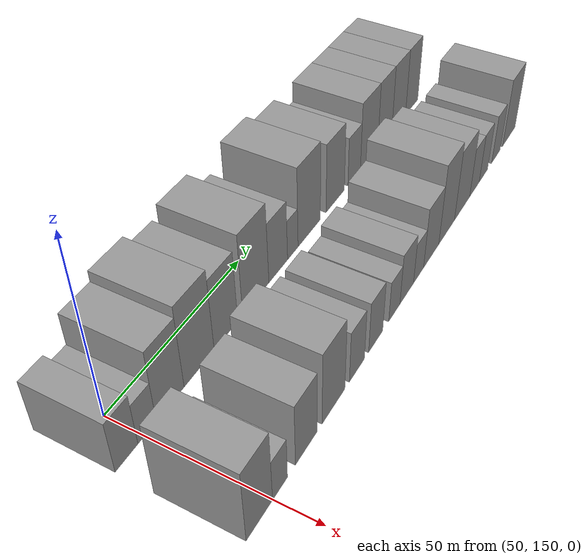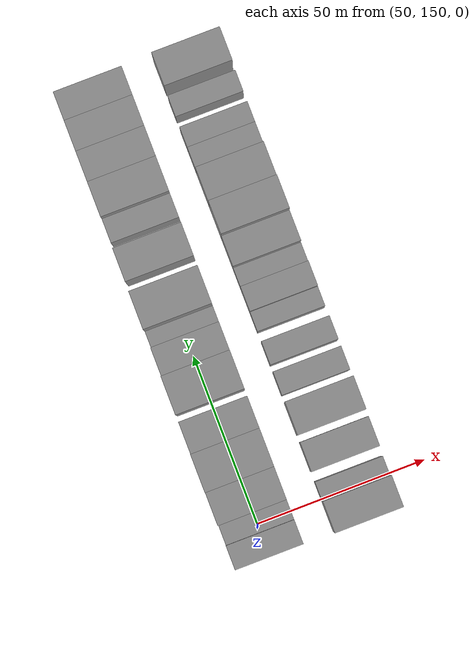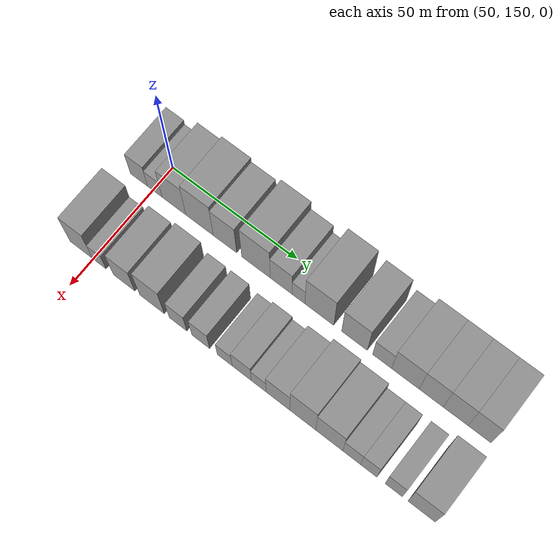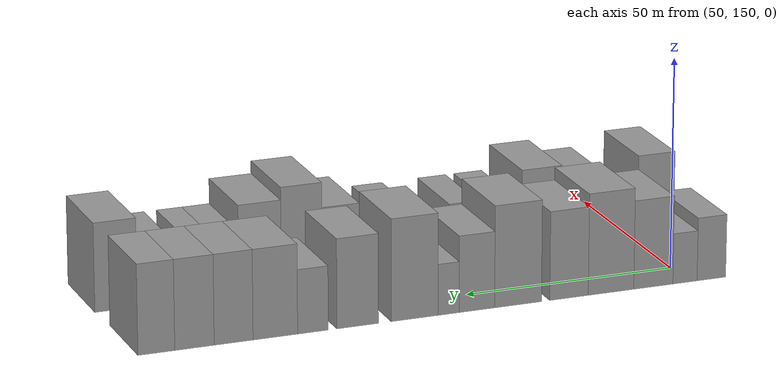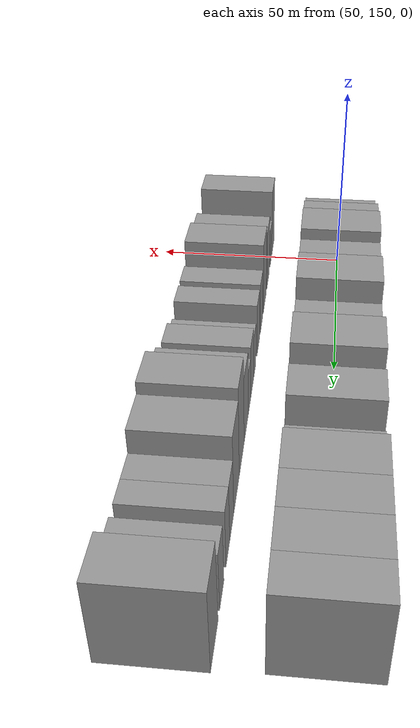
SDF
<sdf version="1.6">
 <world name="default">
  <model name="building_50">
   <static>1</static>
   <pose>50.0000 144.3161 0 0.000000 0.000000 0.000000</pose>
   <link name="link">
    <pose>0 0 7.50 0 0 0</pose>
    <collision name="collision"><geometry><box><size>20.0000 7.1079 15.0000</size></box></geometry></collision>
    <visual name="visual">
     <cast_shadows>0</cast_shadows>
     <geometry><box><size>20.0000 7.1079 15.0000</size></box></geometry>
     <material>
      <script>
       <uri>model://grey_wall/materials/scripts</uri>
       <uri>model://grey_wall/materials/textures</uri>
       <name>vrc/grey_wall</name>
      </script>
     </material>
    </visual>
   </link>
  </model>
  <model name="building_51">
   <static>1</static>
   <pose>50.0000 150.8622 0 0.000000 0.000000 0.000000</pose>
   <link name="link">
    <pose>0 0 6.00 0 0 0</pose>
    <collision name="collision"><geometry><box><size>20.0000 5.9843 12.0000</size></box></geometry></collision>
    <visual name="visual">
     <cast_shadows>0</cast_shadows>
     <geometry><box><size>20.0000 5.9843 12.0000</size></box></geometry>
     <material>
      <script>
       <uri>model://grey_wall/materials/scripts</uri>
       <uri>model://grey_wall/materials/textures</uri>
       <name>vrc/grey_wall</name>
      </script>
     </material>
    </visual>
   </link>
  </model>
  <model name="building_52">
   <static>1</static>
   <pose>50.0000 158.6646 0 0.000000 0.000000 0.000000</pose>
   <link name="link">
    <pose>0 0 10.50 0 0 0</pose>
    <collision name="collision"><geometry><box><size>20.0000 9.6206 21.0000</size></box></geometry></collision>
    <visual name="visual">
     <cast_shadows>0</cast_shadows>
     <geometry><box><size>20.0000 9.6206 21.0000</size></box></geometry>
     <material>
      <script>
       <uri>model://grey_wall/materials/scripts</uri>
       <uri>model://grey_wall/materials/textures</uri>
       <name>vrc/grey_wall</name>
      </script>
     </material>
    </visual>
   </link>
  </model>
  <model name="building_53">
   <static>1</static>
   <pose>50.0000 169.0447 0 0.000000 0.000000 0.000000</pose>
   <link name="link">
    <pose>0 0 12.00 0 0 0</pose>
    <collision name="collision"><geometry><box><size>20.0000 11.1397 24.0000</size></box></geometry></collision>
    <visual name="visual">
     <cast_shadows>0</cast_shadows>
     <geometry><box><size>20.0000 11.1397 24.0000</size></box></geometry>
     <material>
      <script>
       <uri>model://grey_wall/materials/scripts</uri>
       <uri>model://grey_wall/materials/textures</uri>
       <name>vrc/grey_wall</name>
      </script>
     </material>
    </visual>
   </link>
  </model>
  <model name="building_54">
   <static>1</static>
   <pose>50.0000 179.2855 0 0.000000 0.000000 0.000000</pose>
   <link name="link">
    <pose>0 0 10.50 0 0 0</pose>
    <collision name="collision"><geometry><box><size>20.0000 9.3417 21.0000</size></box></geometry></collision>
    <visual name="visual">
     <cast_shadows>0</cast_shadows>
     <geometry><box><size>20.0000 9.3417 21.0000</size></box></geometry>
     <material>
      <script>
       <uri>model://grey_wall/materials/scripts</uri>
       <uri>model://grey_wall/materials/textures</uri>
       <name>vrc/grey_wall</name>
      </script>
     </material>
    </visual>
   </link>
  </model>
  <model name="building_55">
   <static>1</static>
   <pose>50.0000 191.6050 0 0.000000 0.000000 0.000000</pose>
   <link name="link">
    <pose>0 0 12.00 0 0 0</pose>
    <collision name="collision"><geometry><box><size>20.0000 11.2973 24.0000</size></box></geometry></collision>
    <visual name="visual">
     <cast_shadows>0</cast_shadows>
     <geometry><box><size>20.0000 11.2973 24.0000</size></box></geometry>
     <material>
      <script>
       <uri>model://grey_wall/materials/scripts</uri>
       <uri>model://grey_wall/materials/textures</uri>
       <name>vrc/grey_wall</name>
      </script>
     </material>
    </visual>
   </link>
  </model>
  <model name="building_56">
   <static>1</static>
   <pose>50.0000 201.5154 0 0.000000 0.000000 0.000000</pose>
   <link name="link">
    <pose>0 0 9.00 0 0 0</pose>
    <collision name="collision"><geometry><box><size>20.0000 8.5236 18.0000</size></box></geometry></collision>
    <visual name="visual">
     <cast_shadows>0</cast_shadows>
     <geometry><box><size>20.0000 8.5236 18.0000</size></box></geometry>
     <material>
      <script>
       <uri>model://grey_wall/materials/scripts</uri>
       <uri>model://grey_wall/materials/textures</uri>
       <name>vrc/grey_wall</name>
      </script>
     </material>
    </visual>
   </link>
  </model>
  <model name="building_57">
   <static>1</static>
   <pose>50.0000 208.2696 0 0.000000 0.000000 0.000000</pose>
   <link name="link">
    <pose>0 0 6.00 0 0 0</pose>
    <collision name="collision"><geometry><box><size>20.0000 4.9847 12.0000</size></box></geometry></collision>
    <visual name="visual">
     <cast_shadows>0</cast_shadows>
     <geometry><box><size>20.0000 4.9847 12.0000</size></box></geometry>
     <material>
      <script>
       <uri>model://grey_wall/materials/scripts</uri>
       <uri>model://grey_wall/materials/textures</uri>
       <name>vrc/grey_wall</name>
      </script>
     </material>
    </visual>
   </link>
  </model>
  <model name="building_58">
   <static>1</static>
   <pose>50.0000 216.3229 0 0.000000 0.000000 0.000000</pose>
   <link name="link">
    <pose>0 0 12.00 0 0 0</pose>
    <collision name="collision"><geometry><box><size>20.0000 11.1220 24.0000</size></box></geometry></collision>
    <visual name="visual">
     <cast_shadows>0</cast_shadows>
     <geometry><box><size>20.0000 11.1220 24.0000</size></box></geometry>
     <material>
      <script>
       <uri>model://grey_wall/materials/scripts</uri>
       <uri>model://grey_wall/materials/textures</uri>
       <name>vrc/grey_wall</name>
      </script>
     </material>
    </visual>
   </link>
  </model>
  <model name="building_59">
   <static>1</static>
   <pose>50.0000 229.7855 0 0.000000 0.000000 0.000000</pose>
   <link name="link">
    <pose>0 0 10.50 0 0 0</pose>
    <collision name="collision"><geometry><box><size>20.0000 9.8032 21.0000</size></box></geometry></collision>
    <visual name="visual">
     <cast_shadows>0</cast_shadows>
     <geometry><box><size>20.0000 9.8032 21.0000</size></box></geometry>
     <material>
      <script>
       <uri>model://grey_wall/materials/scripts</uri>
       <uri>model://grey_wall/materials/textures</uri>
       <name>vrc/grey_wall</name>
      </script>
     </material>
    </visual>
   </link>
  </model>
  <model name="building_60">
   <static>1</static>
   <pose>50.0000 240.2596 0 0.000000 0.000000 0.000000</pose>
   <link name="link">
    <pose>0 0 7.50 0 0 0</pose>
    <collision name="collision"><geometry><box><size>20.0000 7.1451 15.0000</size></box></geometry></collision>
    <visual name="visual">
     <cast_shadows>0</cast_shadows>
     <geometry><box><size>20.0000 7.1451 15.0000</size></box></geometry>
     <material>
      <script>
       <uri>model://grey_wall/materials/scripts</uri>
       <uri>model://grey_wall/materials/textures</uri>
       <name>vrc/grey_wall</name>
      </script>
     </material>
    </visual>
   </link>
  </model>
  <model name="building_61">
   <static>1</static>
   <pose>50.0000 249.0057 0 0.000000 0.000000 0.000000</pose>
   <link name="link">
    <pose>0 0 10.50 0 0 0</pose>
    <collision name="collision"><geometry><box><size>20.0000 10.3470 21.0000</size></box></geometry></collision>
    <visual name="visual">
     <cast_shadows>0</cast_shadows>
     <geometry><box><size>20.0000 10.3470 21.0000</size></box></geometry>
     <material>
      <script>
       <uri>model://grey_wall/materials/scripts</uri>
       <uri>model://grey_wall/materials/textures</uri>
       <name>vrc/grey_wall</name>
      </script>
     </material>
    </visual>
   </link>
  </model>
  <model name="building_62">
   <static>1</static>
   <pose>50.0000 258.6592 0 0.000000 0.000000 0.000000</pose>
   <link name="link">
    <pose>0 0 10.50 0 0 0</pose>
    <collision name="collision"><geometry><box><size>20.0000 8.9600 21.0000</size></box></geometry></collision>
    <visual name="visual">
     <cast_shadows>0</cast_shadows>
     <geometry><box><size>20.0000 8.9600 21.0000</size></box></geometry>
     <material>
      <script>
       <uri>model://grey_wall/materials/scripts</uri>
       <uri>model://grey_wall/materials/textures</uri>
       <name>vrc/grey_wall</name>
      </script>
     </material>
    </visual>
   </link>
  </model>
  <model name="building_63">
   <static>1</static>
   <pose>50.0000 267.6612 0 0.000000 0.000000 0.000000</pose>
   <link name="link">
    <pose>0 0 10.50 0 0 0</pose>
    <collision name="collision"><geometry><box><size>20.0000 9.0440 21.0000</size></box></geometry></collision>
    <visual name="visual">
     <cast_shadows>0</cast_shadows>
     <geometry><box><size>20.0000 9.0440 21.0000</size></box></geometry>
     <material>
      <script>
       <uri>model://grey_wall/materials/scripts</uri>
       <uri>model://grey_wall/materials/textures</uri>
       <name>vrc/grey_wall</name>
      </script>
     </material>
    </visual>
   </link>
  </model>
  <model name="building_64">
   <static>1</static>
   <pose>50.0000 276.3855 0 0.000000 0.000000 0.000000</pose>
   <link name="link">
    <pose>0 0 10.50 0 0 0</pose>
    <collision name="collision"><geometry><box><size>20.0000 8.4046 21.0000</size></box></geometry></collision>
    <visual name="visual">
     <cast_shadows>0</cast_shadows>
     <geometry><box><size>20.0000 8.4046 21.0000</size></box></geometry>
     <material>
      <script>
       <uri>model://grey_wall/materials/scripts</uri>
       <uri>model://grey_wall/materials/textures</uri>
       <name>vrc/grey_wall</name>
      </script>
     </material>
    </visual>
   </link>
  </model>
  <model name="building_107">
   <static>1</static>
   <pose>79.0000 145.2664 0 0.000000 0.000000 0.000000</pose>
   <link name="link">
    <pose>0 0 10.50 0 0 0</pose>
    <collision name="collision"><geometry><box><size>20.0000 9.1945 21.0000</size></box></geometry></collision>
    <visual name="visual">
     <cast_shadows>0</cast_shadows>
     <geometry><box><size>20.0000 9.1945 21.0000</size></box></geometry>
     <material>
      <script>
       <uri>model://grey_wall/materials/scripts</uri>
       <uri>model://grey_wall/materials/textures</uri>
       <name>vrc/grey_wall</name>
      </script>
     </material>
    </visual>
   </link>
  </model>
  <model name="building_108">
   <static>1</static>
   <pose>79.0000 152.6156 0 0.000000 0.000000 0.000000</pose>
   <link name="link">
    <pose>0 0 6.00 0 0 0</pose>
    <collision name="collision"><geometry><box><size>20.0000 5.5038 12.0000</size></box></geometry></collision>
    <visual name="visual">
     <cast_shadows>0</cast_shadows>
     <geometry><box><size>20.0000 5.5038 12.0000</size></box></geometry>
     <material>
      <script>
       <uri>model://grey_wall/materials/scripts</uri>
       <uri>model://grey_wall/materials/textures</uri>
       <name>vrc/grey_wall</name>
      </script>
     </material>
    </visual>
   </link>
  </model>
  <model name="building_109">
   <static>1</static>
   <pose>79.0000 162.6895 0 0.000000 0.000000 0.000000</pose>
   <link name="link">
    <pose>0 0 9.00 0 0 0</pose>
    <collision name="collision"><geometry><box><size>20.0000 8.6441 18.0000</size></box></geometry></collision>
    <visual name="visual">
     <cast_shadows>0</cast_shadows>
     <geometry><box><size>20.0000 8.6441 18.0000</size></box></geometry>
     <material>
      <script>
       <uri>model://grey_wall/materials/scripts</uri>
       <uri>model://grey_wall/materials/textures</uri>
       <name>vrc/grey_wall</name>
      </script>
     </material>
    </visual>
   </link>
  </model>
  <model name="building_110">
   <static>1</static>
   <pose>79.0000 173.9003 0 0.000000 0.000000 0.000000</pose>
   <link name="link">
    <pose>0 0 10.50 0 0 0</pose>
    <collision name="collision"><geometry><box><size>20.0000 9.7776 21.0000</size></box></geometry></collision>
    <visual name="visual">
     <cast_shadows>0</cast_shadows>
     <geometry><box><size>20.0000 9.7776 21.0000</size></box></geometry>
     <material>
      <script>
       <uri>model://grey_wall/materials/scripts</uri>
       <uri>model://grey_wall/materials/textures</uri>
       <name>vrc/grey_wall</name>
      </script>
     </material>
    </visual>
   </link>
  </model>
  <model name="building_111">
   <static>1</static>
   <pose>79.0000 184.2559 0 0.000000 0.000000 0.000000</pose>
   <link name="link">
    <pose>0 0 7.50 0 0 0</pose>
    <collision name="collision"><geometry><box><size>20.0000 6.9335 15.0000</size></box></geometry></collision>
    <visual name="visual">
     <cast_shadows>0</cast_shadows>
     <geometry><box><size>20.0000 6.9335 15.0000</size></box></geometry>
     <material>
      <script>
       <uri>model://grey_wall/materials/scripts</uri>
       <uri>model://grey_wall/materials/textures</uri>
       <name>vrc/grey_wall</name>
      </script>
     </material>
    </visual>
   </link>
  </model>
  <model name="building_112">
   <static>1</static>
   <pose>79.0000 193.1860 0 0.000000 0.000000 0.000000</pose>
   <link name="link">
    <pose>0 0 7.50 0 0 0</pose>
    <collision name="collision"><geometry><box><size>20.0000 6.9267 15.0000</size></box></geometry></collision>
    <visual name="visual">
     <cast_shadows>0</cast_shadows>
     <geometry><box><size>20.0000 6.9267 15.0000</size></box></geometry>
     <material>
      <script>
       <uri>model://grey_wall/materials/scripts</uri>
       <uri>model://grey_wall/materials/textures</uri>
       <name>vrc/grey_wall</name>
      </script>
     </material>
    </visual>
   </link>
  </model>
  <model name="building_113">
   <static>1</static>
   <pose>79.0000 202.5545 0 0.000000 0.000000 0.000000</pose>
   <link name="link">
    <pose>0 0 6.00 0 0 0</pose>
    <collision name="collision"><geometry><box><size>20.0000 5.8102 12.0000</size></box></geometry></collision>
    <visual name="visual">
     <cast_shadows>0</cast_shadows>
     <geometry><box><size>20.0000 5.8102 12.0000</size></box></geometry>
     <material>
      <script>
       <uri>model://grey_wall/materials/scripts</uri>
       <uri>model://grey_wall/materials/textures</uri>
       <name>vrc/grey_wall</name>
      </script>
     </material>
    </visual>
   </link>
  </model>
  <model name="building_114">
   <static>1</static>
   <pose>79.0000 209.1482 0 0.000000 0.000000 0.000000</pose>
   <link name="link">
    <pose>0 0 7.50 0 0 0</pose>
    <collision name="collision"><geometry><box><size>20.0000 7.3773 15.0000</size></box></geometry></collision>
    <visual name="visual">
     <cast_shadows>0</cast_shadows>
     <geometry><box><size>20.0000 7.3773 15.0000</size></box></geometry>
     <material>
      <script>
       <uri>model://grey_wall/materials/scripts</uri>
       <uri>model://grey_wall/materials/textures</uri>
       <name>vrc/grey_wall</name>
      </script>
     </material>
    </visual>
   </link>
  </model>
  <model name="building_115">
   <static>1</static>
   <pose>79.0000 215.6736 0 0.000000 0.000000 0.000000</pose>
   <link name="link">
    <pose>0 0 6.00 0 0 0</pose>
    <collision name="collision"><geometry><box><size>20.0000 5.6735 12.0000</size></box></geometry></collision>
    <visual name="visual">
     <cast_shadows>0</cast_shadows>
     <geometry><box><size>20.0000 5.6735 12.0000</size></box></geometry>
     <material>
      <script>
       <uri>model://grey_wall/materials/scripts</uri>
       <uri>model://grey_wall/materials/textures</uri>
       <name>vrc/grey_wall</name>
      </script>
     </material>
    </visual>
   </link>
  </model>
  <model name="building_116">
   <static>1</static>
   <pose>79.0000 223.0074 0 0.000000 0.000000 0.000000</pose>
   <link name="link">
    <pose>0 0 9.00 0 0 0</pose>
    <collision name="collision"><geometry><box><size>20.0000 8.9941 18.0000</size></box></geometry></collision>
    <visual name="visual">
     <cast_shadows>0</cast_shadows>
     <geometry><box><size>20.0000 8.9941 18.0000</size></box></geometry>
     <material>
      <script>
       <uri>model://grey_wall/materials/scripts</uri>
       <uri>model://grey_wall/materials/textures</uri>
       <name>vrc/grey_wall</name>
      </script>
     </material>
    </visual>
   </link>
  </model>
  <model name="building_117">
   <static>1</static>
   <pose>79.0000 232.3936 0 0.000000 0.000000 0.000000</pose>
   <link name="link">
    <pose>0 0 12.00 0 0 0</pose>
    <collision name="collision"><geometry><box><size>20.0000 9.7782 24.0000</size></box></geometry></collision>
    <visual name="visual">
     <cast_shadows>0</cast_shadows>
     <geometry><box><size>20.0000 9.7782 24.0000</size></box></geometry>
     <material>
      <script>
       <uri>model://grey_wall/materials/scripts</uri>
       <uri>model://grey_wall/materials/textures</uri>
       <name>vrc/grey_wall</name>
      </script>
     </material>
    </visual>
   </link>
  </model>
  <model name="building_118">
   <static>1</static>
   <pose>79.0000 242.3354 0 0.000000 0.000000 0.000000</pose>
   <link name="link">
    <pose>0 0 10.50 0 0 0</pose>
    <collision name="collision"><geometry><box><size>20.0000 10.1055 21.0000</size></box></geometry></collision>
    <visual name="visual">
     <cast_shadows>0</cast_shadows>
     <geometry><box><size>20.0000 10.1055 21.0000</size></box></geometry>
     <material>
      <script>
       <uri>model://grey_wall/materials/scripts</uri>
       <uri>model://grey_wall/materials/textures</uri>
       <name>vrc/grey_wall</name>
      </script>
     </material>
    </visual>
   </link>
  </model>
  <model name="building_119">
   <static>1</static>
   <pose>79.0000 250.6875 0 0.000000 0.000000 0.000000</pose>
   <link name="link">
    <pose>0 0 7.50 0 0 0</pose>
    <collision name="collision"><geometry><box><size>20.0000 6.5985 15.0000</size></box></geometry></collision>
    <visual name="visual">
     <cast_shadows>0</cast_shadows>
     <geometry><box><size>20.0000 6.5985 15.0000</size></box></geometry>
     <material>
      <script>
       <uri>model://grey_wall/materials/scripts</uri>
       <uri>model://grey_wall/materials/textures</uri>
       <name>vrc/grey_wall</name>
      </script>
     </material>
    </visual>
   </link>
  </model>
  <model name="building_120">
   <static>1</static>
   <pose>79.0000 256.9940 0 0.000000 0.000000 0.000000</pose>
   <link name="link">
    <pose>0 0 7.50 0 0 0</pose>
    <collision name="collision"><geometry><box><size>20.0000 6.0145 15.0000</size></box></geometry></collision>
    <visual name="visual">
     <cast_shadows>0</cast_shadows>
     <geometry><box><size>20.0000 6.0145 15.0000</size></box></geometry>
     <material>
      <script>
       <uri>model://grey_wall/materials/scripts</uri>
       <uri>model://grey_wall/materials/textures</uri>
       <name>vrc/grey_wall</name>
      </script>
     </material>
    </visual>
   </link>
  </model>
  <model name="building_121">
   <static>1</static>
   <pose>79.0000 266.1584 0 0.000000 0.000000 0.000000</pose>
   <link name="link">
    <pose>0 0 7.50 0 0 0</pose>
    <collision name="collision"><geometry><box><size>20.0000 6.3144 15.0000</size></box></geometry></collision>
    <visual name="visual">
     <cast_shadows>0</cast_shadows>
     <geometry><box><size>20.0000 6.3144 15.0000</size></box></geometry>
     <material>
      <script>
       <uri>model://grey_wall/materials/scripts</uri>
       <uri>model://grey_wall/materials/textures</uri>
       <name>vrc/grey_wall</name>
      </script>
     </material>
    </visual>
   </link>
  </model>
  <model name="building_122">
   <static>1</static>
   <pose>79.0000 276.2559 0 0.000000 0.000000 0.000000</pose>
   <link name="link">
    <pose>0 0 10.50 0 0 0</pose>
    <collision name="collision"><geometry><box><size>20.0000 9.8806 21.0000</size></box></geometry></collision>
    <visual name="visual">
     <cast_shadows>0</cast_shadows>
     <geometry><box><size>20.0000 9.8806 21.0000</size></box></geometry>
     <material>
      <script>
       <uri>model://grey_wall/materials/scripts</uri>
       <uri>model://grey_wall/materials/textures</uri>
       <name>vrc/grey_wall</name>
      </script>
     </material>
    </visual>
   </link>
  </model>
 </world>
</sdf>
